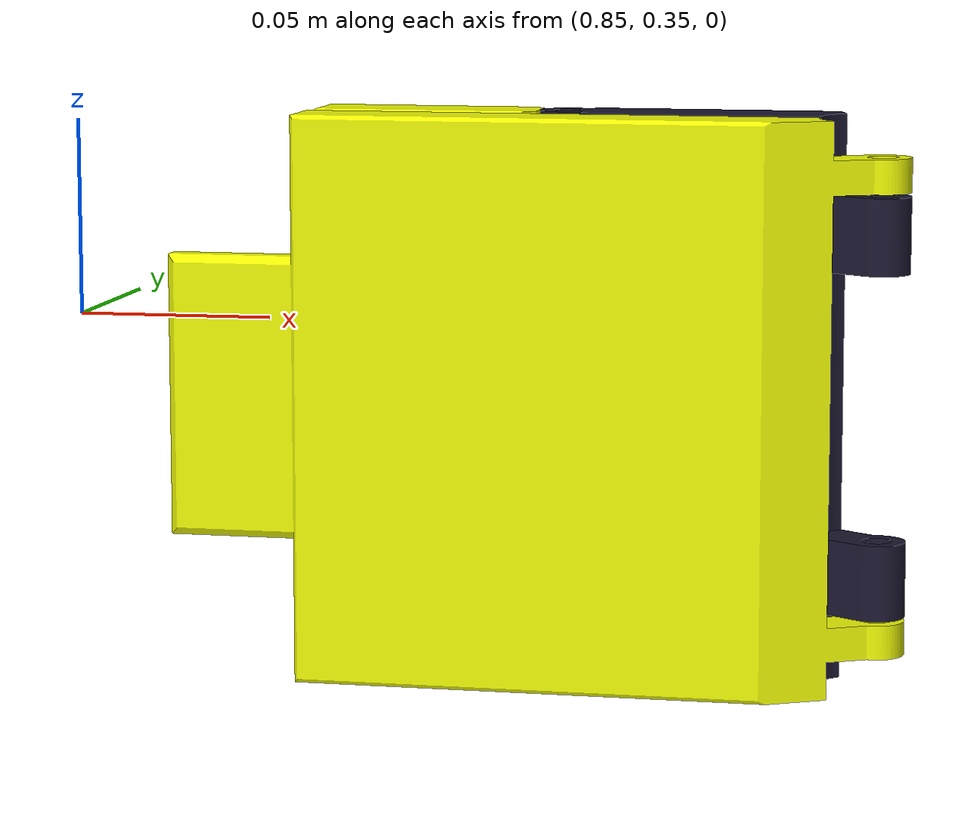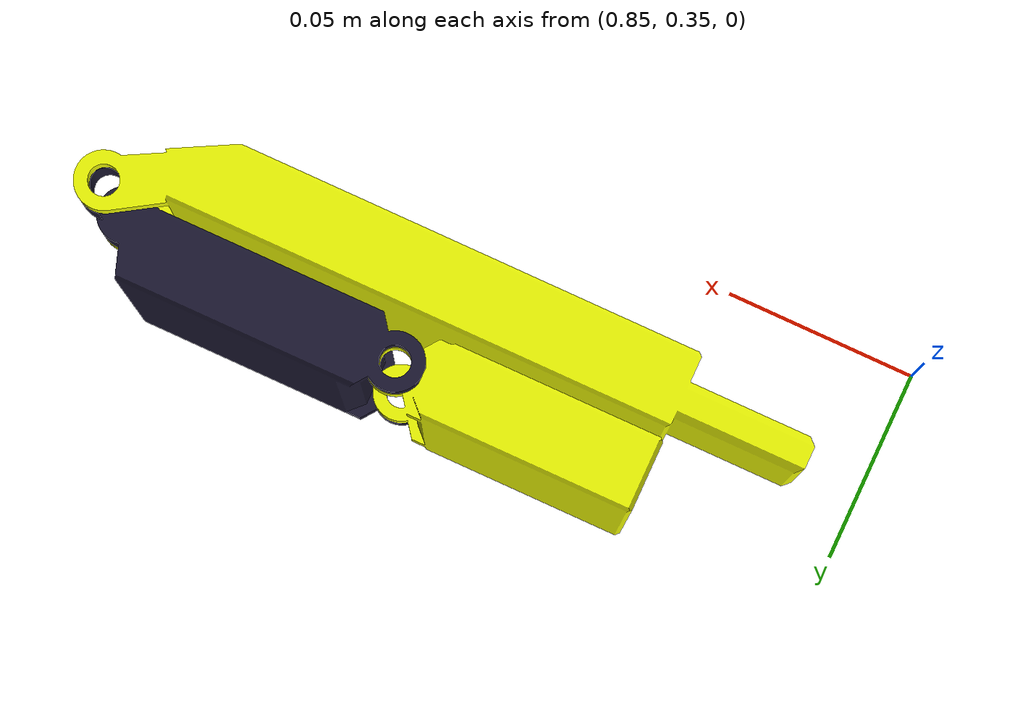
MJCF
<mujoco model="f_block">

  <default>
    <include file="../assets/foldable_block_2/f_block_classes.xml" />
  </default>

  <asset>
    <include file="../assets/foldable_block_2/f_block_assets.xml" />
  </asset>

  <worldbody>

    <!-- 3 body structure -->
    <body name="f2_block_1" pos="0.9 0.37 0.05" quat=" 1    0         0         0 ">
        <joint name="f2_block_free_joint" type="free"/>
        <inertial mass="1" pos="0.075 0.01 -0.075" diaginertia="0.0102675 0.0102675 0.00666"/>

        <geom mesh="f2_block_1" rgba="0.9278748131857267 0.9750400105728048 0.011301633201228567 1"  class="f2_block_visual"/>
        <geom mesh="f2_block_1_collision_0" rgba="0.18076945838831482 0.19889101927907116 0.8724239034434478 1" class="f2_block_collision" />
        <geom mesh="f2_block_1_collision_1" rgba="0.8349444943689354 0.6761946945189133 0.33010370045568516 1" class="f2_block_collision"/>
        <geom mesh="f2_block_1_collision_2" rgba="0.8938555477495602 0.370864054702849 0.04724099909715218 1" class="f2_block_collision"/>
        <geom mesh="f2_block_1_collision_3" rgba="0.3162295518708149 0.43406955044978357 0.9791849935326291 1" class="f2_block_collision"/>
        <geom mesh="f2_block_1_collision_4" rgba="0.99271047162903 0.9285073596818263 0.12479439747228471 1" class="f2_block_collision"/>
        <geom mesh="f2_block_1_collision_5" rgba="0.05935130030960267 0.7529771890764725 0.22837089692494694 1" class="f2_block_collision"/>
        <geom mesh="f2_block_1_collision_6" rgba="0.5246572492242306 0.03168377816698431 0.9426439340006577 1" class="f2_block_collision"/>

        <body name="f2_block_2" pos="0 0.042828 -0.150" quat="0 -1 0 0">
          <inertial mass="1" pos="0.108 0.005 -0.075" diaginertia="0.0102675 0.0102675 0.00666"/>
          <joint name="f2_block_1_joint" pos="0.151414 0.021414 0" axis="0 0 1"  damping="0.03" range="0 4.7115"/>

          <geom mesh="f2_block_2" rgba="0.105 0.091 0.188 1"  class="f2_block_visual"/>
          <geom mesh="f2_block_2_collision_0" rgba="0.2992562329040618 0.4252512394630181 0.831912094117138 1" class="f2_block_collision"/>
          <geom mesh="f2_block_2_collision_1" rgba="0.1595922727019311 0.9696162877792459 0.7224056856424816 1" class="f2_block_collision"/>
          <geom mesh="f2_block_2_collision_2" rgba="0.5697960670610052 0.058134170473644775 0.022095857956316856 1" class="f2_block_collision"/>
          <geom mesh="f2_block_2_collision_3" rgba="0.4917060296470629 0.3552274733575328 0.8838357735143907 1" class="f2_block_collision"/>
          <geom mesh="f2_block_2_collision_4" rgba="0.818091198063223 0.9977975896167404 0.9309074839164203 1" class="f2_block_collision"/>
          <geom mesh="f2_block_2_collision_5" rgba="0.2045959024773919 0.8322210462263822 0.8901627770026551 1" class="f2_block_collision"/>
          <geom mesh="f2_block_2_collision_6" rgba="0.009942686740152862 0.9703182884271851 0.5732672283776591 1" class="f2_block_collision"/>
          <geom mesh="f2_block_2_collision_7" rgba="0.7804299043810422 0.31807659347790285 0.5917882320637473 1" class="f2_block_collision"/>
          <geom mesh="f2_block_2_collision_8" rgba="0.9671768451814209 0.19808913405221396 0.23480364706907042 1" class="f2_block_collision"/>
          <geom mesh="f2_block_2_collision_9" rgba="0.15242985507146656 0.36353944985387865 0.73685715043536 1" class="f2_block_collision"/>
          <geom mesh="f2_block_2_collision_10" rgba="0.7302542886026162 0.823207302484809 0.7233513146871697 1" class="f2_block_collision"/>
          <geom mesh="f2_block_2_collision_11" rgba="0.7164745169684029 0.1446042318676245 0.4511542596490652 1" class="f2_block_collision"/>
          <geom mesh="f2_block_2_collision_12" rgba="0.8984840228586387 0.036138279900696735 0.5181052602017654 1" class="f2_block_collision"/>
          <geom mesh="f2_block_2_collision_13" rgba="0.9809984678723527 0.12621369935889304 0.02902941078799759 1" class="f2_block_collision"/>
          <geom mesh="f2_block_2_collision_14" rgba="0.7693930973723884 0.24307205425641587 0.3650497666124821 1" class="f2_block_collision"/>

            <body name="f2_block_3" pos="0.135 0.0 -0.150" quat="0 0 -1 0">
              <inertial mass="1" pos="0.1050 0.005 -0.075" diaginertia="0.0102675 0.0102675 0.00666"/>
              <joint name="f2_block_2_joint" pos="0.067 0.010 0" axis="0 0 1" damping="0.03" range="-1.57 1.57" ref="0"/>

              <geom mesh="f2_block_3" rgba="0.9278748131857267 0.9750400105728048 0.011301633201228567 1"  class="f2_block_visual"/>
              <geom mesh="f2_block_3_collision_0" rgba="0.3479196293457689 0.936881400039445 0.3570730238849361 1" class="f2_block_collision"/>
              <geom mesh="f2_block_3_collision_1" rgba="0.8328970229694058 0.7708377545532884 0.0995791673758365 1" class="f2_block_collision"/>
              <geom mesh="f2_block_3_collision_2" rgba="0.24767238234134437 0.5397577865419405 0.2923584799686584 1" class="f2_block_collision"/>
              <geom mesh="f2_block_3_collision_3" rgba="0.038840350777118005 0.7193890744367787 0.8025918501932199 1" class="f2_block_collision"/>
              <geom mesh="f2_block_3_collision_4" rgba="0.39684270494857277 0.4858339620834494 0.07307505008312642 1" class="f2_block_collision"/>
              <geom mesh="f2_block_3_collision_5" rgba="0.9428168584295121 0.10658825946129424 0.9836557879487716 1" class="f2_block_collision"/>
            </body>
        </body>
    </body>

    <!-- 2 body structure -->

  </worldbody>

  <actuator>
    <!-- actuators for position control -->

    <!-- actuators for velocity control -->

    <!-- actuators for torque control -->

  </actuator>

</mujoco>

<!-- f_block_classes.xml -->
<mujocoinclude>
    <default class="f2_block_visual">
    <geom group="2" type="mesh" contype="0" conaffinity="0"/>
    </default>
    <default class="f2_block_collision">
    <geom group="3" type="mesh" contype="1" conaffinity="1" friction="0.05 0.005 0.0001"/>
    </default>
</mujocoinclude>

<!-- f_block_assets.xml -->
<mujocoinclude>
    <!-- block 1 assets -->
    <mesh file="../assets/foldable_block_2/assets/f2_block_1/f2_block_1.obj"/>
    <mesh file="../assets/foldable_block_2/assets/f2_block_1/f2_block_1_collision_0.obj"/>
    <mesh file="../assets/foldable_block_2/assets/f2_block_1/f2_block_1_collision_1.obj"/>
    <mesh file="../assets/foldable_block_2/assets/f2_block_1/f2_block_1_collision_2.obj"/>
    <mesh file="../assets/foldable_block_2/assets/f2_block_1/f2_block_1_collision_3.obj"/>
    <mesh file="../assets/foldable_block_2/assets/f2_block_1/f2_block_1_collision_4.obj"/>
    <mesh file="../assets/foldable_block_2/assets/f2_block_1/f2_block_1_collision_5.obj"/>
    <mesh file="../assets/foldable_block_2/assets/f2_block_1/f2_block_1_collision_6.obj"/>

    <!-- block 2 assets -->
    <mesh file="../assets/foldable_block_2/assets/f2_block_2/f2_block_2.obj"/>
    <mesh file="../assets/foldable_block_2/assets/f2_block_2/f2_block_2_collision_0.obj"/>
    <mesh file="../assets/foldable_block_2/assets/f2_block_2/f2_block_2_collision_1.obj"/>
    <mesh file="../assets/foldable_block_2/assets/f2_block_2/f2_block_2_collision_2.obj"/>
    <mesh file="../assets/foldable_block_2/assets/f2_block_2/f2_block_2_collision_3.obj"/>
    <mesh file="../assets/foldable_block_2/assets/f2_block_2/f2_block_2_collision_4.obj"/>
    <mesh file="../assets/foldable_block_2/assets/f2_block_2/f2_block_2_collision_5.obj"/>
    <mesh file="../assets/foldable_block_2/assets/f2_block_2/f2_block_2_collision_6.obj"/>
    <mesh file="../assets/foldable_block_2/assets/f2_block_2/f2_block_2_collision_7.obj"/>
    <mesh file="../assets/foldable_block_2/assets/f2_block_2/f2_block_2_collision_8.obj"/>
    <mesh file="../assets/foldable_block_2/assets/f2_block_2/f2_block_2_collision_9.obj"/>
    <mesh file="../assets/foldable_block_2/assets/f2_block_2/f2_block_2_collision_10.obj"/>
    <mesh file="../assets/foldable_block_2/assets/f2_block_2/f2_block_2_collision_11.obj"/>
    <mesh file="../assets/foldable_block_2/assets/f2_block_2/f2_block_2_collision_12.obj"/>
    <mesh file="../assets/foldable_block_2/assets/f2_block_2/f2_block_2_collision_13.obj"/>
    <mesh file="../assets/foldable_block_2/assets/f2_block_2/f2_block_2_collision_14.obj"/>

    <!-- block 2 assets -->
    <mesh file="../assets/foldable_block_2/assets/f2_block_3/f2_block_3.obj"/>
    <mesh file="../assets/foldable_block_2/assets/f2_block_3/f2_block_3_collision_0.obj"/>
    <mesh file="../assets/foldable_block_2/assets/f2_block_3/f2_block_3_collision_1.obj"/>
    <mesh file="../assets/foldable_block_2/assets/f2_block_3/f2_block_3_collision_2.obj"/>
    <mesh file="../assets/foldable_block_2/assets/f2_block_3/f2_block_3_collision_3.obj"/>
    <mesh file="../assets/foldable_block_2/assets/f2_block_3/f2_block_3_collision_4.obj"/>
    <mesh file="../assets/foldable_block_2/assets/f2_block_3/f2_block_3_collision_5.obj"/>

</mujocoinclude>
